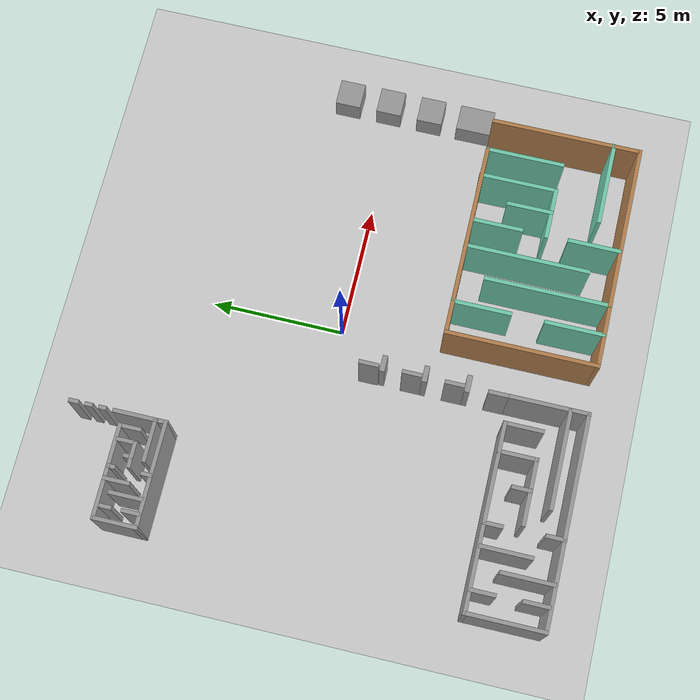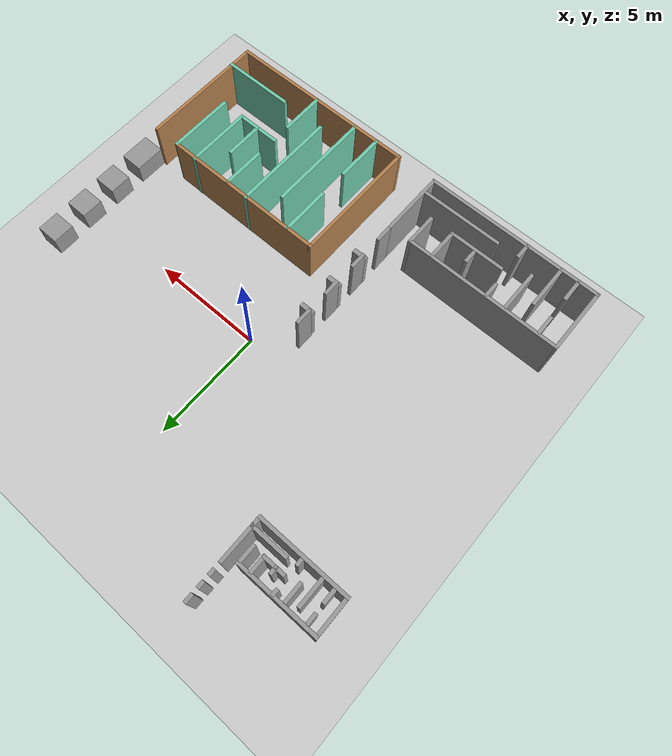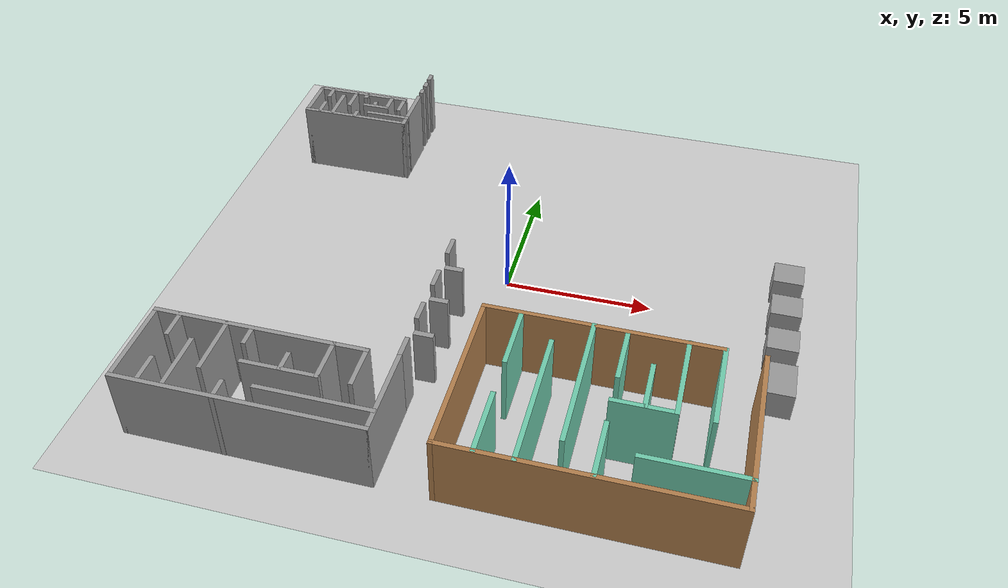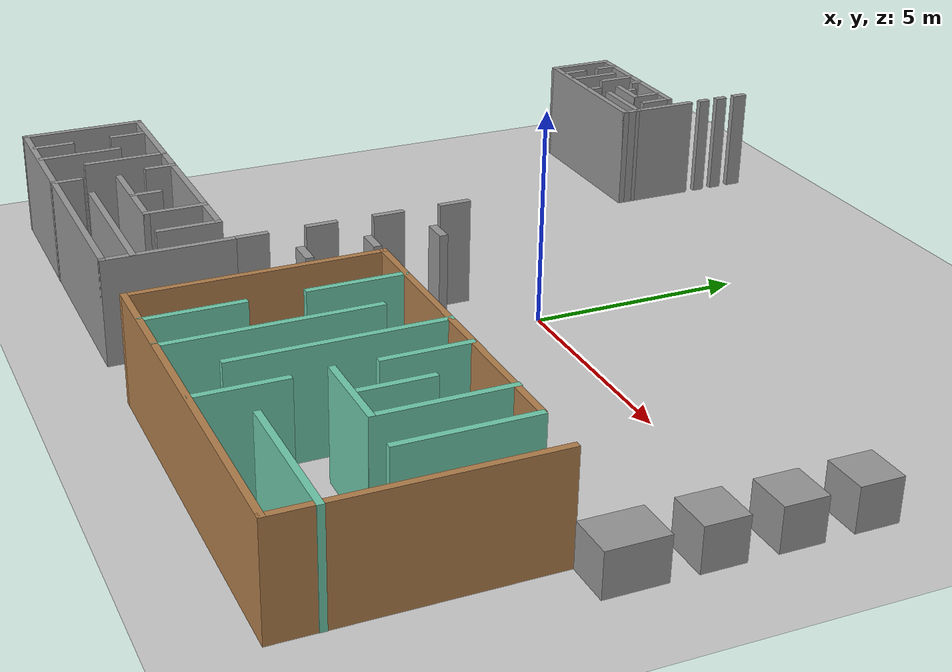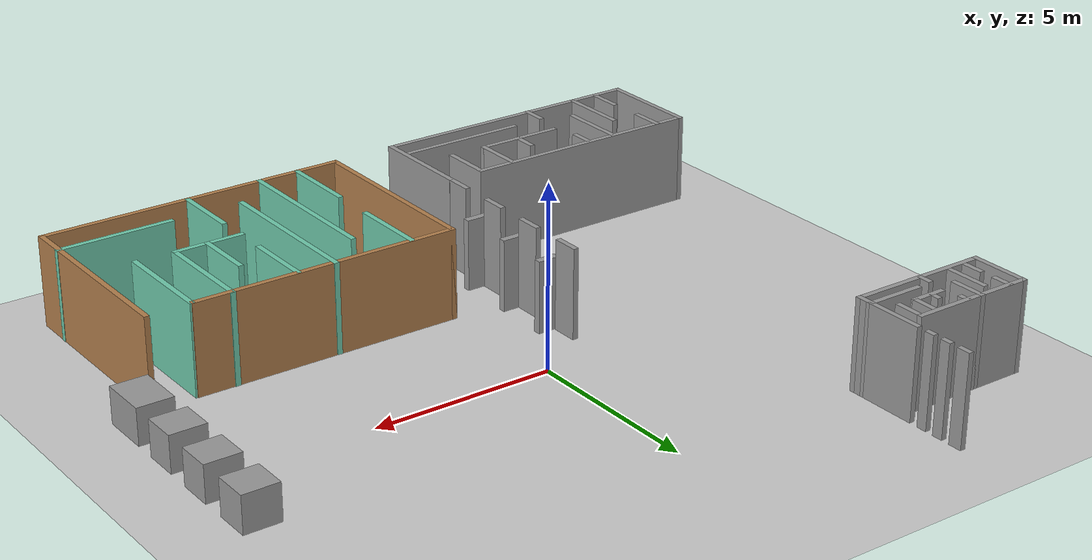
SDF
<sdf version="1.6">
 <world name="default">
  <scene><ambient>0.4 0.4 0.4 1</ambient><background>0.7 0.7 0.7 1</background><shadows>1</shadows></scene>
  <light name="sun" type="directional">
   <pose>0 0 10 0 -0 0</pose>
   <diffuse>0.8 0.8 0.8 1</diffuse>
   <specular>0.2 0.2 0.2 1</specular>
   <attenuation>
    <range>1000</range>
    <constant>0.9</constant>
    <linear>0.01</linear>
    <quadratic>0.001</quadratic>
   </attenuation>
   <direction>-0.5 0.1 -0.9</direction>
  </light>
  <model name="ground_plane">
   <static>1</static>
   <link name="link">
    <collision name="collision">
     <geometry><plane><normal>0 0 1</normal><size>100 100</size></plane></geometry>
     <surface>
      <contact><collide_bitmask>65535</collide_bitmask></contact>
      <friction><ode><mu>100</mu><mu2>50</mu2></ode></friction>
     </surface>
    </collision>
    <visual name="visual">
     <cast_shadows>0</cast_shadows>
     <geometry><plane><normal>0 0 1</normal><size>100 100</size></plane></geometry>
     <material>
      <script><uri>file://media/materials/scripts/gazebo.material</uri><name>Gazebo/Grey</name></script>
     </material>
    </visual>
   </link>
  </model>
  <physics name="default_physics" default="0" type="ode">
   <real_time_update_rate>1000</real_time_update_rate>
   <max_step_size>0.001</max_step_size>
   <real_time_factor>1</real_time_factor>
   <ode>
    <solver>
     <type>quick</type>
     <iters>150</iters>
     <precon_iters>0</precon_iters>
     <sor>1.4</sor>
     <use_dynamic_moi_rescaling>1</use_dynamic_moi_rescaling>
    </solver>
    <constraints>
     <cfm>1e-05</cfm>
     <erp>0.2</erp>
     <contact_max_correcting_vel>2000</contact_max_correcting_vel>
     <contact_surface_layer>0.01</contact_surface_layer>
    </constraints>
   </ode>
  </physics>
  <gravity>0 0 -9.8</gravity>
  <magnetic_field>6e-06 2.3e-05 -4.2e-05</magnetic_field>
  <atmosphere type="adiabatic"/>
  <audio><device>default</device></audio>
  <spherical_coordinates>
   <surface_model>EARTH_WGS84</surface_model>
   <latitude_deg>0</latitude_deg>
   <longitude_deg>0</longitude_deg>
   <elevation>0</elevation>
   <heading_deg>0</heading_deg>
  </spherical_coordinates>
  <model name="NewWorld">
   <pose>-5.56275 -8.05573 0 0 -0 0</pose>
   <link name="Wall_1">
    <collision name="Wall_1_Collision">
     <geometry><box><size>3 0.15 2.5</size></box></geometry>
     <pose>0 0 1.25 0 -0 0</pose>
    </collision>
    <visual name="Wall_1_Visual">
     <pose>0 0 1.25 0 -0 0</pose>
     <geometry><box><size>3 0.15 2.5</size></box></geometry>
     <material>
      <script><uri>file://media/materials/scripts/gazebo.material</uri><name>Gazebo/Grey</name></script>
      <ambient>1 1 1 1</ambient>
     </material>
     <meta><layer>0</layer></meta>
    </visual>
    <pose>-3.925 0.005 0 0 -0 -1.5708</pose>
   </link>
   <link name="Wall_10">
    <collision name="Wall_10_Collision">
     <geometry><box><size>1 0.15 2.5</size></box></geometry>
     <pose>0 0 1.25 0 -0 0</pose>
    </collision>
    <visual name="Wall_10_Visual">
     <pose>0 0 1.25 0 -0 0</pose>
     <geometry><box><size>1 0.15 2.5</size></box></geometry>
     <material>
      <script><uri>file://media/materials/scripts/gazebo.material</uri><name>Gazebo/Grey</name></script>
      <ambient>1 1 1 1</ambient>
     </material>
     <meta><layer>0</layer></meta>
    </visual>
    <pose>-3.075 -0.915 0 0 -0 1.5708</pose>
   </link>
   <link name="Wall_12">
    <collision name="Wall_12_Collision">
     <geometry><box><size>2 0.15 2.5</size></box></geometry>
     <pose>0 0 1.25 0 -0 0</pose>
    </collision>
    <visual name="Wall_12_Visual">
     <pose>0 0 1.25 0 -0 0</pose>
     <geometry><box><size>2 0.15 2.5</size></box></geometry>
     <material>
      <script><uri>file://media/materials/scripts/gazebo.material</uri><name>Gazebo/Grey</name></script>
      <ambient>1 1 1 1</ambient>
     </material>
     <meta><layer>0</layer></meta>
    </visual>
    <pose>-2.285 -0.445 0 0 -0 1.5708</pose>
   </link>
   <link name="Wall_14">
    <collision name="Wall_14_Collision">
     <geometry><box><size>2 0.15 2.5</size></box></geometry>
     <pose>0 0 1.25 0 -0 0</pose>
    </collision>
    <visual name="Wall_14_Visual">
     <pose>0 0 1.25 0 -0 0</pose>
     <geometry><box><size>2 0.15 2.5</size></box></geometry>
     <material>
      <script><uri>file://media/materials/scripts/gazebo.material</uri><name>Gazebo/Grey</name></script>
      <ambient>1 1 1 1</ambient>
     </material>
     <meta><layer>0</layer></meta>
    </visual>
    <pose>-1.555 0.485 0 0 -0 -1.5708</pose>
   </link>
   <link name="Wall_16">
    <collision name="Wall_16_Collision">
     <geometry><box><size>0.75 0.15 2.5</size></box></geometry>
     <pose>0 0 1.25 0 -0 0</pose>
    </collision>
    <visual name="Wall_16_Visual">
     <pose>0 0 1.25 0 -0 0</pose>
     <geometry><box><size>0.75 0.15 2.5</size></box></geometry>
     <material>
      <script><uri>file://media/materials/scripts/gazebo.material</uri><name>Gazebo/Grey</name></script>
      <ambient>1 1 1 1</ambient>
     </material>
     <meta><layer>0</layer></meta>
    </visual>
    <pose>-0.725 1.11 0 0 -0 -1.5708</pose>
   </link>
   <link name="Wall_19">
    <collision name="Wall_19_Collision">
     <geometry><box><size>0.75 0.15 2.5</size></box></geometry>
     <pose>0 0 1.25 0 -0 0</pose>
    </collision>
    <visual name="Wall_19_Visual">
     <pose>0 0 1.25 0 -0 0</pose>
     <geometry><box><size>0.75 0.15 2.5</size></box></geometry>
     <material>
      <script><uri>file://media/materials/scripts/gazebo.material</uri><name>Gazebo/Grey</name></script>
      <ambient>1 1 1 1</ambient>
     </material>
     <meta><layer>0</layer></meta>
    </visual>
    <pose>-0.685 -1.13 0 0 -0 1.5708</pose>
   </link>
   <link name="Wall_2">
    <collision name="Wall_2_Collision">
     <geometry><box><size>8 0.15 2.5</size></box></geometry>
     <pose>0 0 1.25 0 -0 0</pose>
    </collision>
    <visual name="Wall_2_Visual">
     <pose>0 0 1.25 0 -0 0</pose>
     <geometry><box><size>8 0.15 2.5</size></box></geometry>
     <material>
      <script><uri>file://media/materials/scripts/gazebo.material</uri><name>Gazebo/Grey</name></script>
      <ambient>1 1 1 1</ambient>
     </material>
     <meta><layer>0</layer></meta>
    </visual>
    <pose>-0 -1.42 0 0 -0 0</pose>
   </link>
   <link name="Wall_23">
    <collision name="Wall_23_Collision">
     <geometry><box><size>1.5 0.15 2.5</size></box></geometry>
     <pose>0 0 1.25 0 -0 0</pose>
    </collision>
    <visual name="Wall_23_Visual">
     <pose>0 0 1.25 0 -0 0</pose>
     <geometry><box><size>1.5 0.15 2.5</size></box></geometry>
     <material>
      <script><uri>file://media/materials/scripts/gazebo.material</uri><name>Gazebo/Grey</name></script>
      <ambient>1 1 1 1</ambient>
     </material>
     <meta><layer>0</layer></meta>
    </visual>
    <pose>1.875 0.745 0 0 -0 -1.5708</pose>
   </link>
   <link name="Wall_24">
    <collision name="Wall_24_Collision">
     <geometry><box><size>2.5 0.15 2.5</size></box></geometry>
     <pose>0 0 1.25 0 -0 0</pose>
    </collision>
    <visual name="Wall_24_Visual">
     <pose>0 0 1.25 0 -0 0</pose>
     <geometry><box><size>2.5 0.15 2.5</size></box></geometry>
     <material>
      <script><uri>file://media/materials/scripts/gazebo.material</uri><name>Gazebo/Grey</name></script>
      <ambient>1 1 1 1</ambient>
     </material>
     <meta><layer>0</layer></meta>
    </visual>
    <pose>0.7 0.07 0 0 -0 3.14159</pose>
   </link>
   <link name="Wall_26">
    <collision name="Wall_26_Collision">
     <geometry><box><size>0.75 0.15 2.5</size></box></geometry>
     <pose>0 0 1.25 0 -0 0</pose>
    </collision>
    <visual name="Wall_26_Visual">
     <pose>0 0 1.25 0 -0 0</pose>
     <geometry><box><size>0.75 0.15 2.5</size></box></geometry>
     <material>
      <script><uri>file://media/materials/scripts/gazebo.material</uri><name>Gazebo/Grey</name></script>
      <ambient>1 1 1 1</ambient>
     </material>
     <meta><layer>0</layer></meta>
    </visual>
    <pose>0.735 0.38 0 0 -0 -1.5708</pose>
   </link>
   <link name="Wall_28">
    <collision name="Wall_28_Collision">
     <geometry><box><size>3.75 0.15 2.5</size></box></geometry>
     <pose>0 0 1.25 0 -0 0</pose>
    </collision>
    <visual name="Wall_28_Visual">
     <pose>0 0 1.25 0 -0 0</pose>
     <geometry><box><size>3.75 0.15 2.5</size></box></geometry>
     <material>
      <script><uri>file://media/materials/scripts/gazebo.material</uri><name>Gazebo/Grey</name></script>
      <ambient>1 1 1 1</ambient>
     </material>
     <meta><layer>0</layer></meta>
    </visual>
    <pose>2.095 -0.76 0 0 -0 3.14159</pose>
   </link>
   <link name="Wall_3">
    <collision name="Wall_3_Collision">
     <geometry><box><size>3 0.15 2.5</size></box></geometry>
     <pose>0 0 1.25 0 -0 0</pose>
    </collision>
    <visual name="Wall_3_Visual">
     <pose>0 0 1.25 0 -0 0</pose>
     <geometry><box><size>3 0.15 2.5</size></box></geometry>
     <material>
      <script><uri>file://media/materials/scripts/gazebo.material</uri><name>Gazebo/Grey</name></script>
      <ambient>1 1 1 1</ambient>
     </material>
     <meta><layer>0</layer></meta>
    </visual>
    <pose>3.925 0.005 0 0 -0 1.5708</pose>
   </link>
   <link name="Wall_5">
    <collision name="Wall_5_Collision">
     <geometry><box><size>7 0.15 2.5</size></box></geometry>
     <pose>0 0 1.25 0 -0 0</pose>
    </collision>
    <visual name="Wall_5_Visual">
     <pose>0 0 1.25 0 -0 0</pose>
     <geometry><box><size>7 0.15 2.5</size></box></geometry>
     <material>
      <script><uri>file://media/materials/scripts/gazebo.material</uri><name>Gazebo/Grey</name></script>
      <ambient>1 1 1 1</ambient>
     </material>
     <meta><layer>0</layer></meta>
    </visual>
    <pose>-0.5 1.43 0 0 -0 0</pose>
   </link>
   <link name="Wall_6">
    <collision name="Wall_6_Collision">
     <geometry><box><size>1.5 0.15 2.5</size></box></geometry>
     <pose>0 0 1.25 0 -0 0</pose>
    </collision>
    <visual name="Wall_6_Visual">
     <pose>0 0 1.25 0 -0 0</pose>
     <geometry><box><size>1.5 0.15 2.5</size></box></geometry>
     <material>
      <script><uri>file://media/materials/scripts/gazebo.material</uri><name>Gazebo/Grey</name></script>
      <ambient>1 1 1 1</ambient>
     </material>
     <meta><layer>0</layer></meta>
    </visual>
    <pose>2.925 0.755 0 0 -0 -1.5708</pose>
   </link>
   <link name="Wall_8">
    <collision name="Wall_8_Collision">
     <geometry><box><size>1 0.15 2.5</size></box></geometry>
     <pose>0 0 1.25 0 -0 0</pose>
    </collision>
    <visual name="Wall_8_Visual">
     <pose>0 0 1.25 0 -0 0</pose>
     <geometry><box><size>1 0.15 2.5</size></box></geometry>
     <material>
      <script><uri>file://media/materials/scripts/gazebo.material</uri><name>Gazebo/Grey</name></script>
      <ambient>1 1 1 1</ambient>
     </material>
     <meta><layer>0</layer></meta>
    </visual>
    <pose>-3.105 0.995 0 0 -0 -1.5708</pose>
   </link>
   <static>1</static>
  </model>
  <model name="Room_With_large_doors">
   <pose>-1.62672 -3.79727 0 0 -0 0</pose>
   <link name="Door_0">
    <collision name="Door_0_Collision">
     <geometry><box><size>0.644268 0.2 2</size></box></geometry>
     <pose>0 0 1 0 -0 0</pose>
    </collision>
    <visual name="Door_0_Visual">
     <pose>0 0 1 0 -0 0</pose>
     <geometry><box><size>0.644268 0.2 2</size></box></geometry>
     <material>
      <script><uri>file://media/materials/scripts/gazebo.material</uri><name>Gazebo/Grey</name></script>
     </material>
    </visual>
    <pose>0.236992 -1.2733 0 0 -0 0</pose>
   </link>
   <link name="Door_1">
    <collision name="Door_1_Collision">
     <geometry><box><size>0.615386 0.2 2</size></box></geometry>
     <pose>0 0 1 0 -0 0</pose>
    </collision>
    <visual name="Door_1_Visual">
     <pose>0 0 1 0 -0 0</pose>
     <geometry><box><size>0.615386 0.2 2</size></box></geometry>
     <material>
      <script><uri>file://media/materials/scripts/gazebo.material</uri><name>Gazebo/Grey</name></script>
     </material>
    </visual>
    <pose>0.240769 0.315212 0 0 -0 0</pose>
   </link>
   <link name="Door_2">
    <collision name="Door_2_Collision">
     <geometry><box><size>0.615262 0.2 2</size></box></geometry>
     <pose>0 0 1 0 -0 0</pose>
    </collision>
    <visual name="Door_2_Visual">
     <pose>0 0 1 0 -0 0</pose>
     <geometry><box><size>0.615262 0.2 2</size></box></geometry>
     <material>
      <script><uri>file://media/materials/scripts/gazebo.material</uri><name>Gazebo/Grey</name></script>
     </material>
    </visual>
    <pose>0.272207 1.89124 0 0 -0 0</pose>
   </link>
   <link name="Wall_11">
    <collision name="Wall_11_Collision">
     <geometry><box><size>0.75 0.15 2.5</size></box></geometry>
     <pose>0 0 1.25 0 -0 0</pose>
    </collision>
    <visual name="Wall_11_Visual">
     <pose>0 0 1.25 0 -0 0</pose>
     <geometry><box><size>0.75 0.15 2.5</size></box></geometry>
     <material>
      <script><uri>file://media/materials/scripts/gazebo.material</uri><name>Gazebo/Grey</name></script>
      <ambient>1 1 1 1</ambient>
     </material>
     <meta><layer>0</layer></meta>
    </visual>
    <pose>0.015967 2.38894 0 0 -0 1.5708</pose>
   </link>
   <link name="Wall_13">
    <collision name="Wall_13_Collision">
     <geometry><box><size>0.75 0.15 2.5</size></box></geometry>
     <pose>0 0 1.25 0 -0 0</pose>
    </collision>
    <visual name="Wall_13_Visual">
     <pose>0 0 1.25 0 -0 0</pose>
     <geometry><box><size>0.75 0.15 2.5</size></box></geometry>
     <material>
      <script><uri>file://media/materials/scripts/gazebo.material</uri><name>Gazebo/Grey</name></script>
      <ambient>1 1 1 1</ambient>
     </material>
     <meta><layer>0</layer></meta>
    </visual>
    <pose>-0.012108 -0.790834 0 0 -0 1.5708</pose>
   </link>
   <link name="Wall_15">
    <collision name="Wall_15_Collision">
     <geometry><box><size>0.75 0.15 2.5</size></box></geometry>
     <pose>0 0 1.25 0 -0 0</pose>
    </collision>
    <visual name="Wall_15_Visual">
     <pose>0 0 1.25 0 -0 0</pose>
     <geometry><box><size>0.75 0.15 2.5</size></box></geometry>
     <material>
      <script><uri>file://media/materials/scripts/gazebo.material</uri><name>Gazebo/Grey</name></script>
      <ambient>1 1 1 1</ambient>
     </material>
     <meta><layer>0</layer></meta>
    </visual>
    <pose>0.009542 0.786692 0 0 -0 1.5708</pose>
   </link>
   <link name="Wall_7">
    <collision name="Wall_7_Collision">
     <geometry><box><size>0.75 0.15 2.5</size></box></geometry>
     <pose>0 0 1.25 0 -0 0</pose>
    </collision>
    <visual name="Wall_7_Visual">
     <pose>0 0 1.25 0 -0 0</pose>
     <geometry><box><size>0.75 0.15 2.5</size></box></geometry>
     <material>
      <script><uri>file://media/materials/scripts/gazebo.material</uri><name>Gazebo/Grey</name></script>
      <ambient>1 1 1 1</ambient>
     </material>
     <meta><layer>0</layer></meta>
    </visual>
    <pose>-0.015967 -2.38894 0 0 -0 -1.5708</pose>
   </link>
   <static>1</static>
  </model>
  <model name="FinalMaze">
   <pose>-7.31365 6.88272 0 0 -0 0</pose>
   <link name="Wall_11">
    <collision name="Wall_11_Collision">
     <geometry><box><size>1.71 0.15 2.5</size></box></geometry>
     <pose>0 0 1.25 0 -0 0</pose>
    </collision>
    <visual name="Wall_11_Visual">
     <pose>0 0 1.25 0 -0 0</pose>
     <geometry><box><size>1.71 0.15 2.5</size></box></geometry>
     <material>
      <script><uri>file://media/materials/scripts/gazebo.material</uri><name>Gazebo/Grey</name></script>
      <ambient>1 1 1 1</ambient>
     </material>
     <meta><layer>0</layer></meta>
    </visual>
    <pose>-1.93692 -0.9835 0 0 -0 1.5708</pose>
   </link>
   <link name="Wall_12">
    <collision name="Wall_12_Collision">
     <geometry><box><size>3.55 0.15 2.5</size></box></geometry>
     <pose>0 0 1.25 0 -0 0</pose>
    </collision>
    <visual name="Wall_12_Visual">
     <pose>0 0 1.25 0 -0 0</pose>
     <geometry><box><size>3.55 0.15 2.5</size></box></geometry>
     <material>
      <script><uri>file://media/materials/scripts/gazebo.material</uri><name>Gazebo/Grey</name></script>
      <ambient>1 1 1 1</ambient>
     </material>
     <meta><layer>0</layer></meta>
    </visual>
    <pose>-0.236918 -0.2035 0 0 -0 0</pose>
   </link>
   <link name="Wall_16">
    <collision name="Wall_16_Collision">
     <geometry><box><size>0.6 0.15 2.5</size></box></geometry>
     <pose>0 0 1.25 0 -0 0</pose>
    </collision>
    <visual name="Wall_16_Visual">
     <pose>0 0 1.25 0 -0 0</pose>
     <geometry><box><size>0.6 0.15 2.5</size></box></geometry>
     <material>
      <script><uri>file://media/materials/scripts/gazebo.material</uri><name>Gazebo/Grey</name></script>
      <ambient>1 1 1 1</ambient>
     </material>
     <meta><layer>0</layer></meta>
    </visual>
    <pose>-1.46692 -0.4385 0 0 -0 -1.5708</pose>
   </link>
   <link name="Wall_18">
    <collision name="Wall_18_Collision">
     <geometry><box><size>0.7 0.15 2.5</size></box></geometry>
     <pose>0 0 1.25 0 -0 0</pose>
    </collision>
    <visual name="Wall_18_Visual">
     <pose>0 0 1.25 0 -0 0</pose>
     <geometry><box><size>0.7 0.15 2.5</size></box></geometry>
     <material>
      <script><uri>file://media/materials/scripts/gazebo.material</uri><name>Gazebo/Grey</name></script>
      <ambient>1 1 1 1</ambient>
     </material>
     <meta><layer>0</layer></meta>
    </visual>
    <pose>-1.45692 -1.4385 0 0 -0 1.5708</pose>
   </link>
   <link name="Wall_20">
    <collision name="Wall_20_Collision">
     <geometry><box><size>1.3 0.15 2.5</size></box></geometry>
     <pose>0 0 1.25 0 -0 0</pose>
    </collision>
    <visual name="Wall_20_Visual">
     <pose>0 0 1.25 0 -0 0</pose>
     <geometry><box><size>1.3 0.15 2.5</size></box></geometry>
     <material>
      <script><uri>file://media/materials/scripts/gazebo.material</uri><name>Gazebo/Grey</name></script>
      <ambient>1 1 1 1</ambient>
     </material>
     <meta><layer>0</layer></meta>
    </visual>
    <pose>-0.936918 -1.1185 0 0 -0 1.5708</pose>
   </link>
   <link name="Wall_22">
    <collision name="Wall_22_Collision">
     <geometry><box><size>1 0.15 2.5</size></box></geometry>
     <pose>0 0 1.25 0 -0 0</pose>
    </collision>
    <visual name="Wall_22_Visual">
     <pose>0 0 1.25 0 -0 0</pose>
     <geometry><box><size>1 0.15 2.5</size></box></geometry>
     <material>
      <script><uri>file://media/materials/scripts/gazebo.material</uri><name>Gazebo/Grey</name></script>
      <ambient>1 1 1 1</ambient>
     </material>
     <meta><layer>0</layer></meta>
    </visual>
    <pose>-0.496918 -0.6285 0 0 -0 -1.5708</pose>
   </link>
   <link name="Wall_24">
    <collision name="Wall_24_Collision">
     <geometry><box><size>0.3 0.15 2.5</size></box></geometry>
     <pose>0 0 1.25 0 -0 0</pose>
    </collision>
    <visual name="Wall_24_Visual">
     <pose>0 0 1.25 0 -0 0</pose>
     <geometry><box><size>0.3 0.15 2.5</size></box></geometry>
     <material>
      <script><uri>file://media/materials/scripts/gazebo.material</uri><name>Gazebo/Grey</name></script>
      <ambient>1 1 1 1</ambient>
     </material>
     <meta><layer>0</layer></meta>
    </visual>
    <pose>-0.046918 -0.3185 0 0 -0 -1.5708</pose>
   </link>
   <link name="Wall_3">
    <collision name="Wall_3_Collision">
     <geometry><box><size>4.019 0.15 2.5</size></box></geometry>
     <pose>0 0 1.25 0 -0 0</pose>
    </collision>
    <visual name="Wall_3_Visual">
     <pose>0 0 1.25 0 -0 0</pose>
     <geometry><box><size>4.019 0.15 2.5</size></box></geometry>
     <material>
      <script><uri>file://media/materials/scripts/gazebo.material</uri><name>Gazebo/Grey</name></script>
      <ambient>1 1 1 1</ambient>
     </material>
     <meta><layer>0</layer></meta>
    </visual>
    <pose>-0.002418 -1.7635 0 0 -0 0</pose>
   </link>
   <link name="Wall_32">
    <collision name="Wall_32_Collision">
     <geometry><box><size>1 0.15 2.5</size></box></geometry>
     <pose>0 0 1.25 0 -0 0</pose>
    </collision>
    <visual name="Wall_32_Visual">
     <pose>0 0 1.25 0 -0 0</pose>
     <geometry><box><size>1 0.15 2.5</size></box></geometry>
     <material>
      <script><uri>file://media/materials/scripts/gazebo.material</uri><name>Gazebo/Grey</name></script>
      <ambient>1 1 1 1</ambient>
     </material>
     <meta><layer>0</layer></meta>
    </visual>
    <pose>0.538082 -0.9135 0 0 -0 0</pose>
   </link>
   <link name="Wall_34">
    <collision name="Wall_34_Collision">
     <geometry><box><size>0.35 0.15 2.5</size></box></geometry>
     <pose>0 0 1.25 0 -0 0</pose>
    </collision>
    <visual name="Wall_34_Visual">
     <pose>0 0 1.25 0 -0 0</pose>
     <geometry><box><size>0.35 0.15 2.5</size></box></geometry>
     <material>
      <script><uri>file://media/materials/scripts/gazebo.material</uri><name>Gazebo/Grey</name></script>
      <ambient>1 1 1 1</ambient>
     </material>
     <meta><layer>0</layer></meta>
    </visual>
    <pose>0.443082 -0.7935 0 0 -0 1.5708</pose>
   </link>
   <link name="Wall_36">
    <collision name="Wall_36_Collision">
     <geometry><box><size>0.75 0.15 2.5</size></box></geometry>
     <pose>0 0 1.25 0 -0 0</pose>
    </collision>
    <visual name="Wall_36_Visual">
     <pose>0 0 1.25 0 -0 0</pose>
     <geometry><box><size>0.75 0.15 2.5</size></box></geometry>
     <material>
      <script><uri>file://media/materials/scripts/gazebo.material</uri><name>Gazebo/Grey</name></script>
      <ambient>1 1 1 1</ambient>
     </material>
     <meta><layer>0</layer></meta>
    </visual>
    <pose>0.963082 -0.5935 0 0 -0 1.5708</pose>
   </link>
   <link name="Wall_38">
    <collision name="Wall_38_Collision">
     <geometry><box><size>0.75 0.15 2.5</size></box></geometry>
     <pose>0 0 1.25 0 -0 0</pose>
    </collision>
    <visual name="Wall_38_Visual">
     <pose>0 0 1.25 0 -0 0</pose>
     <geometry><box><size>0.75 0.15 2.5</size></box></geometry>
     <material>
      <script><uri>file://media/materials/scripts/gazebo.material</uri><name>Gazebo/Grey</name></script>
      <ambient>1 1 1 1</ambient>
     </material>
     <meta><layer>0</layer></meta>
    </visual>
    <pose>1.46308 -0.6235 0 0 -0 -1.5708</pose>
   </link>
   <link name="Wall_40">
    <collision name="Wall_40_Collision">
     <geometry><box><size>0.4 0.15 2.5</size></box></geometry>
     <pose>0 0 1.25 0 -0 0</pose>
    </collision>
    <visual name="Wall_40_Visual">
     <pose>0 0 1.25 0 -0 0</pose>
     <geometry><box><size>0.4 0.15 2.5</size></box></geometry>
     <material>
      <script><uri>file://media/materials/scripts/gazebo.material</uri><name>Gazebo/Grey</name></script>
      <ambient>1 1 1 1</ambient>
     </material>
     <meta><layer>0</layer></meta>
    </visual>
    <pose>-0.036918 -1.5985 0 0 -0 1.5708</pose>
   </link>
   <link name="Wall_57">
    <collision name="Wall_57_Collision">
     <geometry><box><size>0.289 0.15 2.5</size></box></geometry>
     <pose>0 0 1.25 0 -0 0</pose>
    </collision>
    <visual name="Wall_57_Visual">
     <pose>0 0 1.25 0 -0 0</pose>
     <geometry><box><size>0.289 0.15 2.5</size></box></geometry>
     <material>
      <script><uri>file://media/materials/scripts/gazebo.material</uri><name>Gazebo/Grey</name></script>
      <ambient>1 1 1 1</ambient>
     </material>
     <meta><layer>0</layer></meta>
    </visual>
    <pose>1.93208 0.576 0 0 -0 -1.5708</pose>
   </link>
   <link name="Wall_59">
    <collision name="Wall_59_Collision">
     <geometry><box><size>0.3 0.15 2.5</size></box></geometry>
     <pose>0 0 1.25 0 -0 0</pose>
    </collision>
    <visual name="Wall_59_Visual">
     <pose>0 0 1.25 0 -0 0</pose>
     <geometry><box><size>0.3 0.15 2.5</size></box></geometry>
     <material>
      <script><uri>file://media/materials/scripts/gazebo.material</uri><name>Gazebo/Grey</name></script>
      <ambient>1 1 1 1</ambient>
     </material>
     <meta><layer>0</layer></meta>
    </visual>
    <pose>1.93208 1.0865 0 0 -0 1.5708</pose>
   </link>
   <link name="Wall_62">
    <collision name="Wall_62_Collision">
     <geometry><box><size>0.38 0.15 2.5</size></box></geometry>
     <pose>0 0 1.25 0 -0 0</pose>
    </collision>
    <visual name="Wall_62_Visual">
     <pose>0 0 1.25 0 -0 0</pose>
     <geometry><box><size>0.38 0.15 2.5</size></box></geometry>
     <material>
      <script><uri>file://media/materials/scripts/gazebo.material</uri><name>Gazebo/Grey</name></script>
      <ambient>1 1 1 1</ambient>
     </material>
     <meta><layer>0</layer></meta>
    </visual>
    <pose>1.93208 1.6485 0 0 -0 1.5708</pose>
   </link>
   <link name="Wall_64">
    <collision name="Wall_64_Collision">
     <geometry><box><size>1.661 0.15 2.5</size></box></geometry>
     <pose>0 0 1.25 0 -0 0</pose>
    </collision>
    <visual name="Wall_64_Visual">
     <pose>0 0 1.25 0 -0 0</pose>
     <geometry><box><size>1.661 0.15 2.5</size></box></geometry>
     <material>
      <script><uri>file://media/materials/scripts/gazebo.material</uri><name>Gazebo/Grey</name></script>
      <ambient>1 1 1 1</ambient>
     </material>
     <meta><layer>0</layer></meta>
    </visual>
    <pose>1.93208 -0.628 0 0 -0 1.5708</pose>
   </link>
   <link name="Wall_66">
    <collision name="Wall_66_Collision">
     <geometry><box><size>0.53 0.15 2.5</size></box></geometry>
     <pose>0 0 1.25 0 -0 0</pose>
    </collision>
    <visual name="Wall_66_Visual">
     <pose>0 0 1.25 0 -0 0</pose>
     <geometry><box><size>0.53 0.15 2.5</size></box></geometry>
     <material>
      <script><uri>file://media/materials/scripts/gazebo.material</uri><name>Gazebo/Grey</name></script>
      <ambient>1 1 1 1</ambient>
     </material>
     <meta><layer>0</layer></meta>
    </visual>
    <pose>1.93208 -1.5735 0 0 -0 -1.5708</pose>
   </link>
   <link name="Wall_70">
    <collision name="Wall_70_Collision">
     <geometry><box><size>0.180903 0.15 2.5</size></box></geometry>
     <pose>0 0 1.25 0 -0 0</pose>
    </collision>
    <visual name="Wall_70_Visual">
     <pose>0 0 1.25 0 -0 0</pose>
     <geometry><box><size>0.180903 0.15 2.5</size></box></geometry>
     <material>
      <script><uri>file://media/materials/scripts/gazebo.material</uri><name>Gazebo/Grey</name></script>
      <ambient>1 1 1 1</ambient>
     </material>
     <meta><layer>0</layer></meta>
    </visual>
    <pose>1.9328 -1.39894 0 0 -0 -1.52435</pose>
   </link>
   <link name="Wall_72">
    <collision name="Wall_72_Collision">
     <geometry><box><size>1.65 0.15 2.5</size></box></geometry>
     <pose>0 0 1.25 0 -0 0</pose>
    </collision>
    <visual name="Wall_72_Visual">
     <pose>0 0 1.25 0 -0 0</pose>
     <geometry><box><size>1.65 0.15 2.5</size></box></geometry>
     <material>
      <script><uri>file://media/materials/scripts/gazebo.material</uri><name>Gazebo/Grey</name></script>
      <ambient>1 1 1 1</ambient>
     </material>
     <meta><layer>0</layer></meta>
    </visual>
    <pose>1.18208 -1.3835 0 0 -0 3.14159</pose>
   </link>
   <static>1</static>
  </model>
  <model name="room_with_doors">
   <link name="link_0">
    <inertial>
     <mass>1.3523</mass>
     <inertia>
      <ixx>0.318777</ixx>
      <ixy>0</ixy>
      <ixz>0</ixz>
      <iyy>0.225384</iyy>
      <iyz>0</iyz>
      <izz>0.318777</izz>
     </inertia>
    </inertial>
    <pose>0.975123 -1.33272 0.1 0 -0 0</pose>
    <visual name="visual">
     <geometry><box><size>1 1.35231 1</size></box></geometry>
     <material>
      <lighting>1</lighting>
      <script><uri>file://media/materials/scripts/gazebo.material</uri><name>Gazebo/Grey</name></script>
     </material>
    </visual>
    <collision name="collision">
     <geometry><box><size>1 1.35231 1</size></box></geometry>
     <surface>
      <friction>
       <ode><mu>1</mu><mu2>1</mu2><fdir1>0 0 0</fdir1><slip1>0</slip1><slip2>0</slip2></ode>
       <torsional>
        <coefficient>1</coefficient>
        <patch_radius>0</patch_radius>
        <surface_radius>0</surface_radius>
        <use_patch_radius>1</use_patch_radius>
        <ode><slip>0</slip></ode>
       </torsional>
      </friction>
      <bounce><restitution_coefficient>0</restitution_coefficient><threshold>1e+06</threshold></bounce>
      <contact>
       <collide_without_contact>0</collide_without_contact>
       <collide_without_contact_bitmask>1</collide_without_contact_bitmask>
       <collide_bitmask>1</collide_bitmask>
       <ode>
        <soft_cfm>0</soft_cfm>
        <soft_erp>0.2</soft_erp>
        <kp>1e+13</kp>
        <kd>1</kd>
        <max_vel>0.01</max_vel>
        <min_depth>0</min_depth>
       </ode>
       <bullet>
        <split_impulse>1</split_impulse>
        <split_impulse_penetration_threshold>-0.01</split_impulse_penetration_threshold>
        <soft_cfm>0</soft_cfm>
        <soft_erp>0.2</soft_erp>
        <kp>1e+13</kp>
        <kd>1</kd>
       </bullet>
      </contact>
     </surface>
    </collision>
   </link>
   <link name="link_0_clone">
    <inertial>
     <mass>0.973671</mass>
     <inertia>
      <ixx>0.158063</ixx>
      <ixy>0</ixy>
      <ixz>0</ixz>
      <iyy>0.162278</iyy>
      <iyz>0</iyz>
      <izz>0.158063</izz>
     </inertia>
    </inertial>
    <pose>0.974787 0.433874 0.1 0 -0 0</pose>
    <visual name="visual">
     <geometry><box><size>1 0.973678 1</size></box></geometry>
     <material>
      <lighting>1</lighting>
      <script><uri>file://media/materials/scripts/gazebo.material</uri><name>Gazebo/Grey</name></script>
      <shader type="pixel"/>
     </material>
    </visual>
    <collision name="collision">
     <geometry><box><size>1 0.973678 1</size></box></geometry>
     <surface>
      <friction>
       <ode><mu>1</mu><mu2>1</mu2><fdir1>0 0 0</fdir1><slip1>0</slip1><slip2>0</slip2></ode>
       <torsional>
        <coefficient>1</coefficient>
        <patch_radius>0</patch_radius>
        <surface_radius>0</surface_radius>
        <use_patch_radius>1</use_patch_radius>
        <ode><slip>0</slip></ode>
       </torsional>
      </friction>
      <bounce><restitution_coefficient>0</restitution_coefficient><threshold>1e+06</threshold></bounce>
      <contact>
       <collide_without_contact>0</collide_without_contact>
       <collide_without_contact_bitmask>1</collide_without_contact_bitmask>
       <collide_bitmask>1</collide_bitmask>
       <ode>
        <soft_cfm>0</soft_cfm>
        <soft_erp>0.2</soft_erp>
        <kp>1e+13</kp>
        <kd>1</kd>
        <max_vel>0.01</max_vel>
        <min_depth>0</min_depth>
       </ode>
       <bullet>
        <split_impulse>1</split_impulse>
        <split_impulse_penetration_threshold>-0.01</split_impulse_penetration_threshold>
        <soft_cfm>0</soft_cfm>
        <soft_erp>0.2</soft_erp>
        <kp>1e+13</kp>
        <kd>1</kd>
       </bullet>
      </contact>
     </surface>
    </collision>
   </link>
   <link name="link_0_clone_clone">
    <inertial>
     <mass>0.973671</mass>
     <inertia>
      <ixx>0.158063</ixx>
      <ixy>0</ixy>
      <ixz>0</ixz>
      <iyy>0.162278</iyy>
      <iyz>0</iyz>
      <izz>0.158063</izz>
     </inertia>
    </inertial>
    <pose>0.982957 2.05971 0.1 0 -0 0</pose>
    <visual name="visual">
     <geometry><box><size>1 0.973678 1</size></box></geometry>
     <material>
      <lighting>1</lighting>
      <script><uri>file://media/materials/scripts/gazebo.material</uri><name>Gazebo/Grey</name></script>
      <shader type="pixel"/>
     </material>
    </visual>
    <collision name="collision">
     <geometry><box><size>1 0.973678 1</size></box></geometry>
     <surface>
      <friction>
       <ode><mu>1</mu><mu2>1</mu2><fdir1>0 0 0</fdir1><slip1>0</slip1><slip2>0</slip2></ode>
       <torsional>
        <coefficient>1</coefficient>
        <patch_radius>0</patch_radius>
        <surface_radius>0</surface_radius>
        <use_patch_radius>1</use_patch_radius>
        <ode><slip>0</slip></ode>
       </torsional>
      </friction>
      <bounce><restitution_coefficient>0</restitution_coefficient><threshold>1e+06</threshold></bounce>
      <contact>
       <collide_without_contact>0</collide_without_contact>
       <collide_without_contact_bitmask>1</collide_without_contact_bitmask>
       <collide_bitmask>1</collide_bitmask>
       <ode>
        <soft_cfm>0</soft_cfm>
        <soft_erp>0.2</soft_erp>
        <kp>1e+13</kp>
        <kd>1</kd>
        <max_vel>0.01</max_vel>
        <min_depth>0</min_depth>
       </ode>
       <bullet>
        <split_impulse>1</split_impulse>
        <split_impulse_penetration_threshold>-0.01</split_impulse_penetration_threshold>
        <soft_cfm>0</soft_cfm>
        <soft_erp>0.2</soft_erp>
        <kp>1e+13</kp>
        <kd>1</kd>
       </bullet>
      </contact>
     </surface>
    </collision>
   </link>
   <link name="link_0_clone_clone_clone">
    <inertial>
     <mass>0.973671</mass>
     <inertia>
      <ixx>0.158063</ixx>
      <ixy>0</ixy>
      <ixz>0</ixz>
      <iyy>0.162278</iyy>
      <iyz>0</iyz>
      <izz>0.158063</izz>
     </inertia>
    </inertial>
    <pose>0.966793 3.68731 0.1 0 -0 0</pose>
    <visual name="visual">
     <geometry><box><size>1 0.973678 1</size></box></geometry>
     <material>
      <lighting>1</lighting>
      <script><uri>file://media/materials/scripts/gazebo.material</uri><name>Gazebo/Grey</name></script>
      <shader type="pixel"/>
     </material>
    </visual>
    <collision name="collision">
     <geometry><box><size>1 0.973678 1</size></box></geometry>
     <surface>
      <friction>
       <ode><mu>1</mu><mu2>1</mu2><fdir1>0 0 0</fdir1><slip1>0</slip1><slip2>0</slip2></ode>
       <torsional>
        <coefficient>1</coefficient>
        <patch_radius>0</patch_radius>
        <surface_radius>0</surface_radius>
        <use_patch_radius>1</use_patch_radius>
        <ode><slip>0</slip></ode>
       </torsional>
      </friction>
      <bounce><restitution_coefficient>0</restitution_coefficient><threshold>1e+06</threshold></bounce>
      <contact>
       <collide_without_contact>0</collide_without_contact>
       <collide_without_contact_bitmask>1</collide_without_contact_bitmask>
       <collide_bitmask>1</collide_bitmask>
       <ode>
        <soft_cfm>0</soft_cfm>
        <soft_erp>0.2</soft_erp>
        <kp>1e+13</kp>
        <kd>1</kd>
        <max_vel>0.01</max_vel>
        <min_depth>0</min_depth>
       </ode>
       <bullet>
        <split_impulse>1</split_impulse>
        <split_impulse_penetration_threshold>-0.01</split_impulse_penetration_threshold>
        <soft_cfm>0</soft_cfm>
        <soft_erp>0.2</soft_erp>
        <kp>1e+13</kp>
        <kd>1</kd>
       </bullet>
      </contact>
     </surface>
    </collision>
   </link>
   <model name="Small_Assignmnet_room">
    <pose>-3.89966 -4.84817 -0.4 0 -0 0</pose>
    <link name="Wall_11">
     <collision name="Wall_11_Collision">
      <geometry><box><size>2.25 0.15 2.5</size></box></geometry>
      <pose>0 0 1.25 0 -0 0</pose>
     </collision>
     <visual name="Wall_11_Visual">
      <pose>0 0 1.25 0 -0 0</pose>
      <geometry><box><size>2.25 0.15 2.5</size></box></geometry>
      <material>
       <script><uri>file://media/materials/scripts/gazebo.material</uri><name>Gazebo/Grey</name></script>
       <ambient>0.435294 0.796078 0.67451 1</ambient>
      </material>
      <meta><layer>0</layer></meta>
     </visual>
     <pose>-3.11405 -1.73213 0 0 -0 1.5708</pose>
    </link>
    <link name="Wall_13">
     <collision name="Wall_13_Collision">
      <geometry><box><size>4.75 0.15 2.5</size></box></geometry>
      <pose>0 0 1.25 0 -0 0</pose>
     </collision>
     <visual name="Wall_13_Visual">
      <pose>0 0 1.25 0 -0 0</pose>
      <geometry><box><size>4.75 0.15 2.5</size></box></geometry>
      <material>
       <script><uri>file://media/materials/scripts/gazebo.material</uri><name>Gazebo/Grey</name></script>
       <ambient>0.435294 0.796078 0.67451 1</ambient>
      </material>
      <meta><layer>0</layer></meta>
     </visual>
     <pose>-1.96187 -0.500036 0 0 -0 1.5708</pose>
    </link>
    <link name="Wall_16">
     <collision name="Wall_16_Collision">
      <geometry><box><size>4.75 0.15 2.5</size></box></geometry>
      <pose>0 0 1.25 0 -0 0</pose>
     </collision>
     <visual name="Wall_16_Visual">
      <pose>0 0 1.25 0 -0 0</pose>
      <geometry><box><size>4.75 0.15 2.5</size></box></geometry>
      <material>
       <script><uri>file://media/materials/scripts/gazebo.material</uri><name>Gazebo/Grey</name></script>
       <ambient>0.435294 0.796078 0.67451 1</ambient>
      </material>
      <meta><layer>0</layer></meta>
     </visual>
     <pose>-0.859071 0.504207 0 0 -0 -1.5708</pose>
    </link>
    <link name="Wall_18">
     <collision name="Wall_18_Collision">
      <geometry><box><size>2 0.15 2.5</size></box></geometry>
      <pose>0 0 1.25 0 -0 0</pose>
     </collision>
     <visual name="Wall_18_Visual">
      <pose>0 0 1.25 0 -0 0</pose>
      <geometry><box><size>2 0.15 2.5</size></box></geometry>
      <material>
       <script><uri>file://media/materials/scripts/gazebo.material</uri><name>Gazebo/Grey</name></script>
       <ambient>0.435294 0.796078 0.67451 1</ambient>
      </material>
      <meta><layer>0</layer></meta>
     </visual>
     <pose>0.187717 1.84431 0 0 -0 -1.5708</pose>
    </link>
    <link name="Wall_2">
     <collision name="Wall_2_Collision">
      <geometry><box><size>8.75 0.15 2.5</size></box></geometry>
      <pose>0 0 1.25 0 -0 0</pose>
     </collision>
     <visual name="Wall_2_Visual">
      <pose>0 0 1.25 0 -0 0</pose>
      <geometry><box><size>8.75 0.15 2.5</size></box></geometry>
      <material>
       <script><uri>file://media/materials/scripts/gazebo.material</uri><name>Gazebo/Wood</name></script>
       <ambient>1 1 1 1</ambient>
      </material>
      <meta><layer>0</layer></meta>
     </visual>
     <pose>-0.005083 -2.81625 0 0 -0 0</pose>
    </link>
    <link name="Wall_20">
     <collision name="Wall_20_Collision">
      <geometry><box><size>2 0.15 2.5</size></box></geometry>
      <pose>0 0 1.25 0 -0 0</pose>
     </collision>
     <visual name="Wall_20_Visual">
      <pose>0 0 1.25 0 -0 0</pose>
      <geometry><box><size>2 0.15 2.5</size></box></geometry>
      <material>
       <script><uri>file://media/materials/scripts/gazebo.material</uri><name>Gazebo/Grey</name></script>
       <ambient>0.435294 0.796078 0.67451 1</ambient>
      </material>
      <meta><layer>0</layer></meta>
     </visual>
     <pose>0.187717 -1.84203 0 0 -0 1.5708</pose>
    </link>
    <link name="Wall_22">
     <collision name="Wall_22_Collision">
      <geometry><box><size>2 0.15 2.5</size></box></geometry>
      <pose>0 0 1.25 0 -0 0</pose>
     </collision>
     <visual name="Wall_22_Visual">
      <pose>0 0 1.25 0 -0 0</pose>
      <geometry><box><size>2 0.15 2.5</size></box></geometry>
      <material>
       <script><uri>file://media/materials/scripts/gazebo.material</uri><name>Gazebo/Grey</name></script>
       <ambient>0.435294 0.796078 0.67451 1</ambient>
      </material>
      <meta><layer>0</layer></meta>
     </visual>
     <pose>1.08946 -0.033751 0 0 -0 0</pose>
    </link>
    <link name="Wall_23">
     <collision name="Wall_23_Collision">
      <geometry><box><size>3 0.15 2.5</size></box></geometry>
      <pose>0 0 1.25 0 -0 0</pose>
     </collision>
     <visual name="Wall_23_Visual">
      <pose>0 0 1.25 0 -0 0</pose>
      <geometry><box><size>3 0.15 2.5</size></box></geometry>
      <material>
       <script><uri>file://media/materials/scripts/gazebo.material</uri><name>Gazebo/Grey</name></script>
       <ambient>0.435294 0.796078 0.67451 1</ambient>
      </material>
      <meta><layer>0</layer></meta>
     </visual>
     <pose>2.02609 1.39125 0 0 -0 1.5708</pose>
    </link>
    <link name="Wall_25">
     <collision name="Wall_25_Collision">
      <geometry><box><size>1.75 0.15 2.5</size></box></geometry>
      <pose>0 0 1.25 0 -0 0</pose>
     </collision>
     <visual name="Wall_25_Visual">
      <pose>0 0 1.25 0 -0 0</pose>
      <geometry><box><size>1.75 0.15 2.5</size></box></geometry>
      <material>
       <script><uri>file://media/materials/scripts/gazebo.material</uri><name>Gazebo/Grey</name></script>
       <ambient>0.435294 0.796078 0.67451 1</ambient>
      </material>
      <meta><layer>0</layer></meta>
     </visual>
     <pose>1.1182 0.77788 0 0 -0 1.5708</pose>
    </link>
    <link name="Wall_27">
     <collision name="Wall_27_Collision">
      <geometry><box><size>3 0.15 2.5</size></box></geometry>
      <pose>0 0 1.25 0 -0 0</pose>
     </collision>
     <visual name="Wall_27_Visual">
      <pose>0 0 1.25 0 -0 0</pose>
      <geometry><box><size>3 0.15 2.5</size></box></geometry>
      <material>
       <script><uri>file://media/materials/scripts/gazebo.material</uri><name>Gazebo/Grey</name></script>
       <ambient>0.435294 0.796078 0.67451 1</ambient>
      </material>
      <meta><layer>0</layer></meta>
     </visual>
     <pose>3.09546 1.35594 0 0 -0 -1.5708</pose>
    </link>
    <link name="Wall_29">
     <collision name="Wall_29_Collision">
      <geometry><box><size>5.75 0.15 2.5</size></box></geometry>
      <pose>0 0 1.25 0 -0 0</pose>
     </collision>
     <visual name="Wall_29_Visual">
      <pose>0 0 1.25 0 -0 0</pose>
      <geometry><box><size>5.75 0.15 2.5</size></box></geometry>
      <material>
       <script><uri>file://media/materials/scripts/gazebo.material</uri><name>Gazebo/Wood</name></script>
       <ambient>1 1 1 1</ambient>
      </material>
      <meta><layer>0</layer></meta>
     </visual>
     <pose>4.29492 -0.016249 0 0 -0 1.5708</pose>
    </link>
    <link name="Wall_31">
     <collision name="Wall_31_Collision">
      <geometry><box><size>3.25 0.15 2.5</size></box></geometry>
      <pose>0 0 1.25 0 -0 0</pose>
     </collision>
     <visual name="Wall_31_Visual">
      <pose>0 0 1.25 0 -0 0</pose>
      <geometry><box><size>3.25 0.15 2.5</size></box></geometry>
      <material>
       <script><uri>file://media/materials/scripts/gazebo.material</uri><name>Gazebo/Grey</name></script>
       <ambient>0.435294 0.796078 0.67451 1</ambient>
      </material>
      <meta><layer>0</layer></meta>
     </visual>
     <pose>2.75508 -1.82492 0 0 -0 3.14159</pose>
    </link>
    <link name="Wall_5">
     <collision name="Wall_5_Collision">
      <geometry><box><size>5.76323 0.15 2.5</size></box></geometry>
      <pose>0 0 1.25 0 -0 0</pose>
     </collision>
     <visual name="Wall_5_Visual">
      <pose>0 0 1.25 0 -0 0</pose>
      <geometry><box><size>5.76323 0.15 2.5</size></box></geometry>
      <material>
       <script><uri>file://media/materials/scripts/gazebo.material</uri><name>Gazebo/Wood</name></script>
       <ambient>1 1 1 1</ambient>
      </material>
      <meta><layer>0</layer></meta>
     </visual>
     <pose>-4.30508 -0.009636 0 0 -0 1.5708</pose>
    </link>
    <link name="Wall_7">
     <collision name="Wall_7_Collision">
      <geometry><box><size>7.5 0.15 2.5</size></box></geometry>
      <pose>0 0 1.25 0 -0 0</pose>
     </collision>
     <visual name="Wall_7_Visual">
      <pose>0 0 1.25 0 -0 0</pose>
      <geometry><box><size>7.5 0.15 2.5</size></box></geometry>
      <material>
       <script><uri>file://media/materials/scripts/gazebo.material</uri><name>Gazebo/Wood</name></script>
       <ambient>1 1 1 1</ambient>
      </material>
      <meta><layer>0</layer></meta>
     </visual>
     <pose>-0.630083 2.79698 0 0 -0 0</pose>
    </link>
    <link name="Wall_9">
     <collision name="Wall_9_Collision">
      <geometry><box><size>2.25 0.15 2.5</size></box></geometry>
      <pose>0 0 1.25 0 -0 0</pose>
     </collision>
     <visual name="Wall_9_Visual">
      <pose>0 0 1.25 0 -0 0</pose>
      <geometry><box><size>2.25 0.15 2.5</size></box></geometry>
      <material>
       <script><uri>file://media/materials/scripts/gazebo.material</uri><name>Gazebo/Grey</name></script>
       <ambient>0.435294 0.796078 0.67451 1</ambient>
      </material>
      <meta><layer>0</layer></meta>
     </visual>
     <pose>-3.09884 1.71906 0 0 -0 -1.5708</pose>
    </link>
    <static>1</static>
   </model>
   <static>0</static>
   <pose>8.39596 -1.80299 0.4 0 -0 0</pose>
  </model>
 </world>
</sdf>
